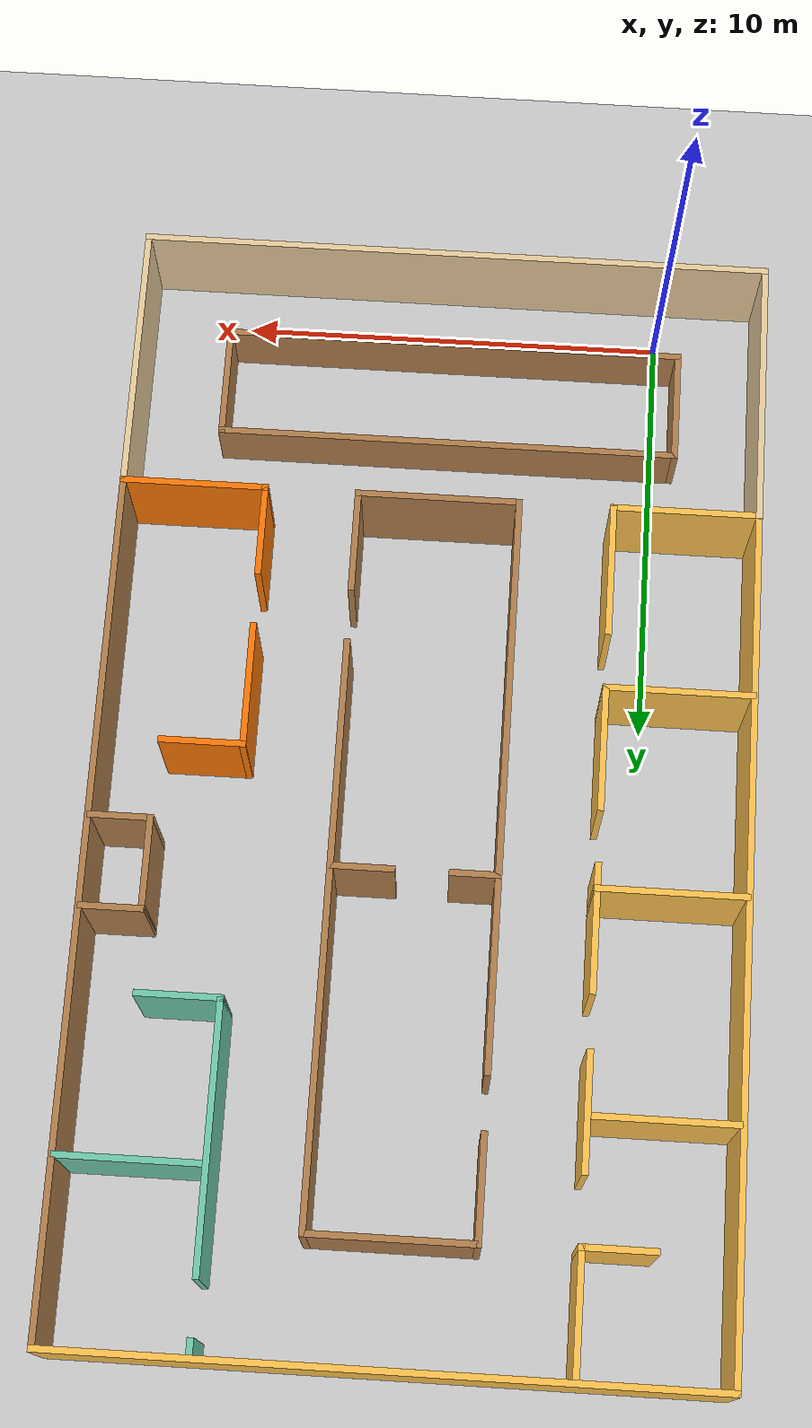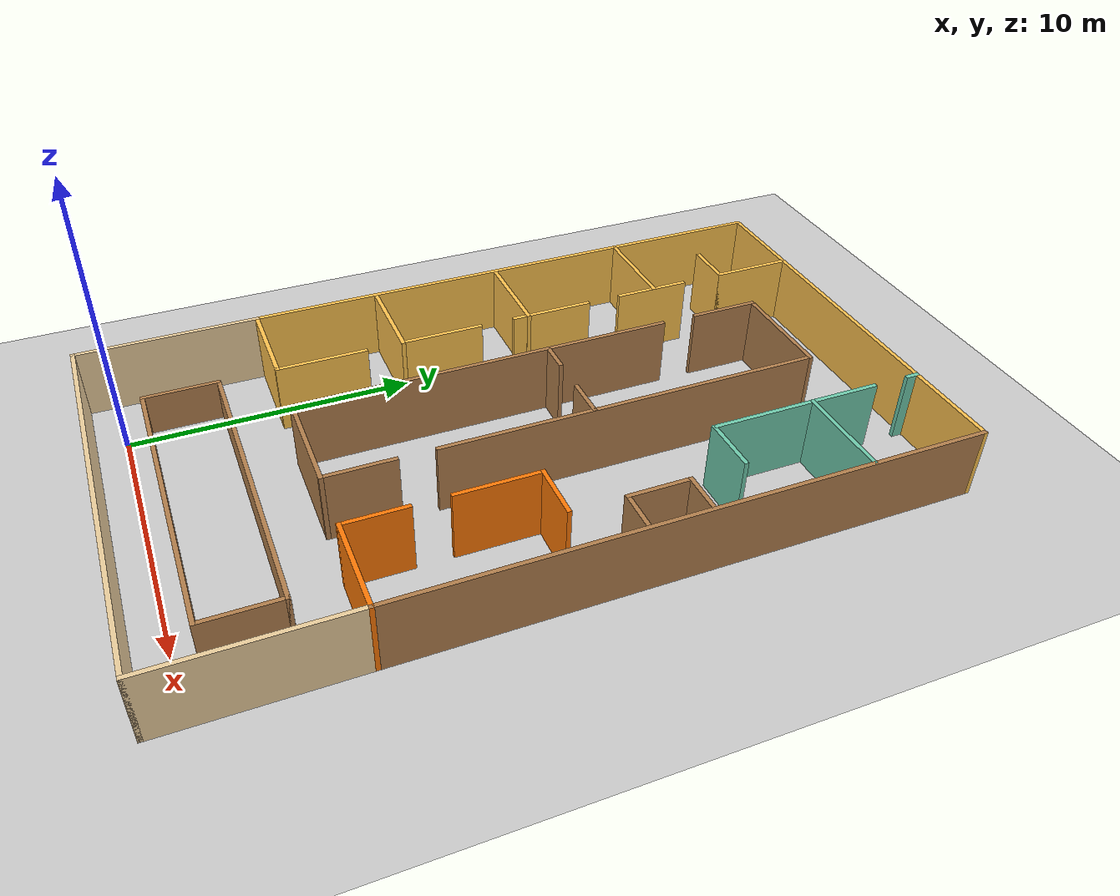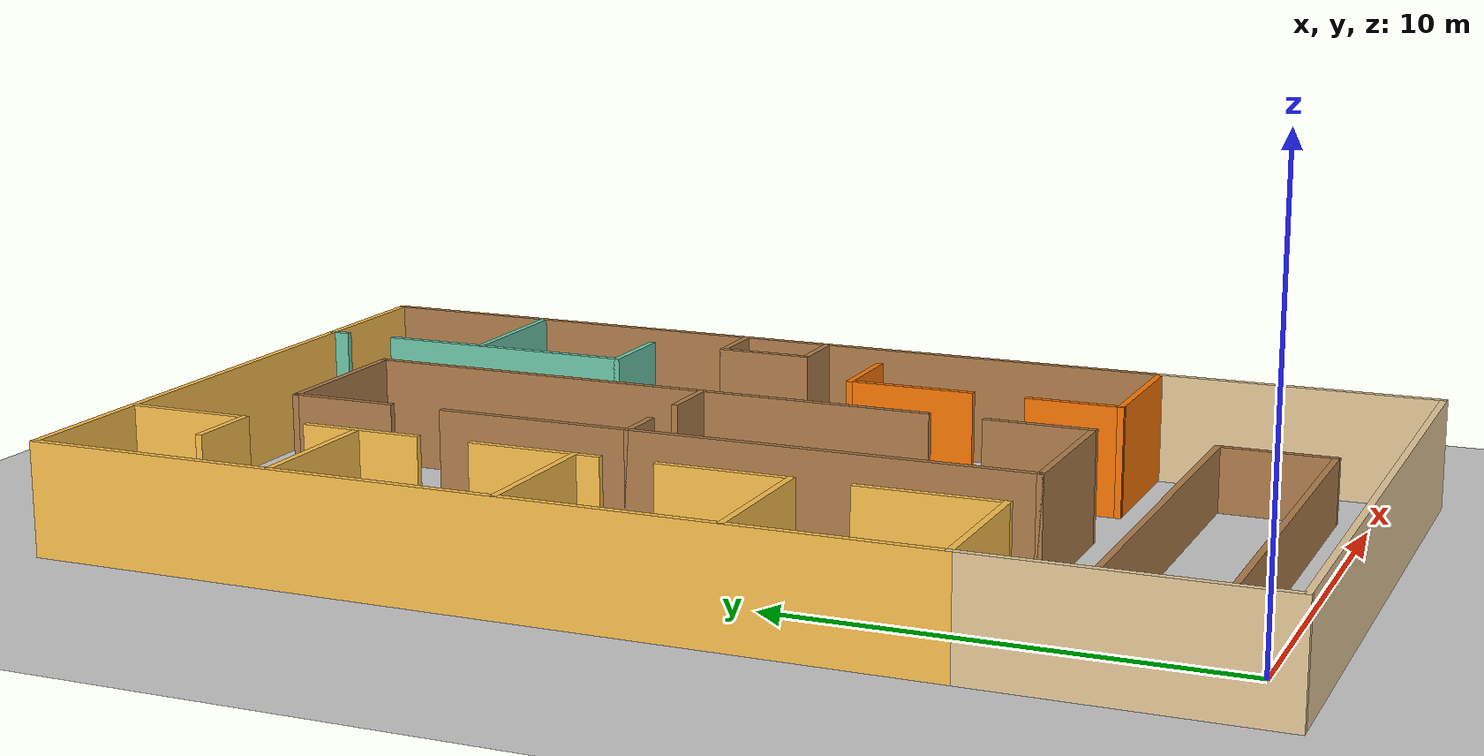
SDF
<sdf version="1.6">
 <world name="default">
  <light name="sun" type="directional">
   <pose>0 0 10 0 -0 0</pose>
   <diffuse>0.8 0.8 0.8 1</diffuse>
   <specular>0.2 0.2 0.2 1</specular>
   <attenuation>
    <range>1000</range>
    <constant>0.9</constant>
    <linear>0.01</linear>
    <quadratic>0.001</quadratic>
   </attenuation>
   <direction>-0.5 0.1 -0.9</direction>
  </light>
  <model name="ground_plane">
   <static>1</static>
   <link name="link">
    <collision name="collision">
     <geometry><plane><normal>0 0 1</normal><size>100 100</size></plane></geometry>
     <surface>
      <contact><collide_bitmask>65535</collide_bitmask></contact>
      <friction><ode><mu>100</mu><mu2>50</mu2></ode></friction>
     </surface>
    </collision>
    <visual name="visual">
     <cast_shadows>0</cast_shadows>
     <geometry><plane><normal>0 0 1</normal><size>100 100</size></plane></geometry>
     <material>
      <script><uri>file://media/materials/scripts/gazebo.material</uri><name>Gazebo/Grey</name></script>
     </material>
    </visual>
   </link>
  </model>
  <gravity>0 0 -9.8</gravity>
  <magnetic_field>6e-06 2.3e-05 -4.2e-05</magnetic_field>
  <atmosphere type="adiabatic"/>
  <physics name="default_physics" default="0" type="ode">
   <max_step_size>0.001</max_step_size>
   <real_time_factor>1</real_time_factor>
   <real_time_update_rate>1000</real_time_update_rate>
  </physics>
  <scene><ambient>0.4 0.4 0.4 1</ambient><background>0.7 0.7 0.7 1</background><shadows>1</shadows></scene>
  <spherical_coordinates>
   <surface_model>EARTH_WGS84</surface_model>
   <latitude_deg>0</latitude_deg>
   <longitude_deg>0</longitude_deg>
   <elevation>0</elevation>
   <heading_deg>0</heading_deg>
  </spherical_coordinates>
  <model name="office01">
   <pose>5 12 0 0 0 -1.5708</pose>
   <link name="Wall_101">
    <collision name="Wall_101_Collision">
     <geometry><box><size>3.908 0.15 2.5</size></box></geometry>
     <pose>0 0 1.25 0 -0 0</pose>
    </collision>
    <visual name="Wall_101_Visual">
     <pose>0 0 1.25 0 -0 0</pose>
     <geometry><box><size>3.908 0.15 2.5</size></box></geometry>
     <material>
      <script><uri>file://media/materials/scripts/gazebo.material</uri><name>Gazebo/Wood</name></script>
      <ambient>1 1 1 1</ambient>
     </material>
     <meta><layer>0</layer></meta>
    </visual>
    <pose>6.74313 0.040849 0 0 -0 1.5708</pose>
   </link>
   <link name="Wall_103">
    <collision name="Wall_103_Collision">
     <geometry><box><size>3.47808 0.15 2.5</size></box></geometry>
     <pose>0 0 1.25 0 -0 0</pose>
    </collision>
    <visual name="Wall_103_Visual">
     <pose>0 0 1.25 0 -0 0</pose>
     <geometry><box><size>3.47808 0.15 2.5</size></box></geometry>
     <material>
      <script><uri>file://media/materials/scripts/gazebo.material</uri><name>Gazebo/Grey</name></script>
      <ambient>0.996078 0.47451 0.0196078 1</ambient>
     </material>
     <meta><layer>0</layer></meta>
    </visual>
    <pose>6.75012 5.76085 0 0 -0 1.5708</pose>
   </link>
   <link name="Wall_105">
    <collision name="Wall_105_Collision">
     <geometry><box><size>3.53479 0.15 2.5</size></box></geometry>
     <pose>0 0 1.25 0 -0 0</pose>
    </collision>
    <visual name="Wall_105_Visual">
     <pose>0 0 1.25 0 -0 0</pose>
     <geometry><box><size>3.53479 0.15 2.5</size></box></geometry>
     <material>
      <script><uri>file://media/materials/scripts/gazebo.material</uri><name>Gazebo/Grey</name></script>
      <ambient>1 0.764706 0.305882 1</ambient>
     </material>
     <meta><layer>0</layer></meta>
    </visual>
    <pose>6.75012 -5.73265 0 0 -0 1.5708</pose>
   </link>
   <link name="Wall_113">
    <collision name="Wall_113_Collision">
     <geometry><box><size>6.5 0.15 2.5</size></box></geometry>
     <pose>0 0 1.25 0 -0 0</pose>
    </collision>
    <visual name="Wall_113_Visual">
     <pose>0 0 1.25 0 -0 0</pose>
     <geometry><box><size>6.5 0.15 2.5</size></box></geometry>
     <material>
      <script><uri>file://media/materials/scripts/gazebo.material</uri><name>Gazebo/Grey</name></script>
      <ambient>0.921569 0.807843 0.615686 1</ambient>
     </material>
     <meta><layer>0</layer></meta>
    </visual>
    <pose>9.92512 7.42485 0 0 -0 0</pose>
   </link>
   <link name="Wall_114">
    <collision name="Wall_114_Collision">
     <geometry><box><size>15 0.15 2.5</size></box></geometry>
     <pose>0 0 1.25 0 -0 0</pose>
    </collision>
    <visual name="Wall_114_Visual">
     <pose>0 0 1.25 0 -0 0</pose>
     <geometry><box><size>15 0.15 2.5</size></box></geometry>
     <material>
      <script><uri>file://media/materials/scripts/gazebo.material</uri><name>Gazebo/Grey</name></script>
      <ambient>0.921569 0.807843 0.615686 1</ambient>
     </material>
     <meta><layer>0</layer></meta>
    </visual>
    <pose>13.1001 -0.000151 0 0 -0 -1.5708</pose>
   </link>
   <link name="Wall_115">
    <collision name="Wall_115_Collision">
     <geometry><box><size>6.5 0.15 2.5</size></box></geometry>
     <pose>0 0 1.25 0 -0 0</pose>
    </collision>
    <visual name="Wall_115_Visual">
     <pose>0 0 1.25 0 -0 0</pose>
     <geometry><box><size>6.5 0.15 2.5</size></box></geometry>
     <material>
      <script><uri>file://media/materials/scripts/gazebo.material</uri><name>Gazebo/Grey</name></script>
      <ambient>0.921569 0.807843 0.615686 1</ambient>
     </material>
     <meta><layer>0</layer></meta>
    </visual>
    <pose>9.92512 -7.42515 0 0 -0 3.14159</pose>
   </link>
   <link name="Wall_117">
    <collision name="Wall_117_Collision">
     <geometry><box><size>2.75 0.15 1.5</size></box></geometry>
     <pose>0 0 0.75 0 -0 0</pose>
    </collision>
    <visual name="Wall_117_Visual">
     <pose>0 0 0.75 0 -0 0</pose>
     <geometry><box><size>2.75 0.15 1.5</size></box></geometry>
     <material>
      <script><uri>file://media/materials/scripts/gazebo.material</uri><name>Gazebo/Wood</name></script>
      <ambient>0.921569 0.807843 0.615686 1</ambient>
     </material>
     <meta><layer>0</layer></meta>
    </visual>
    <pose>9.90413 5.35785 0 0 -0 0</pose>
   </link>
   <link name="Wall_118">
    <collision name="Wall_118_Collision">
     <geometry><box><size>11 0.15 1.5</size></box></geometry>
     <pose>0 0 0.75 0 -0 0</pose>
    </collision>
    <visual name="Wall_118_Visual">
     <pose>0 0 0.75 0 -0 0</pose>
     <geometry><box><size>11 0.15 1.5</size></box></geometry>
     <material>
      <script><uri>file://media/materials/scripts/gazebo.material</uri><name>Gazebo/Wood</name></script>
      <ambient>0.921569 0.807843 0.615686 1</ambient>
     </material>
     <meta><layer>0</layer></meta>
    </visual>
    <pose>11.2041 -0.067151 0 0 -0 -1.5708</pose>
   </link>
   <link name="Wall_119">
    <collision name="Wall_119_Collision">
     <geometry><box><size>2.75 0.15 1.5</size></box></geometry>
     <pose>0 0 0.75 0 -0 0</pose>
    </collision>
    <visual name="Wall_119_Visual">
     <pose>0 0 0.75 0 -0 0</pose>
     <geometry><box><size>2.75 0.15 1.5</size></box></geometry>
     <material>
      <script><uri>file://media/materials/scripts/gazebo.material</uri><name>Gazebo/Wood</name></script>
      <ambient>0.921569 0.807843 0.615686 1</ambient>
     </material>
     <meta><layer>0</layer></meta>
    </visual>
    <pose>9.90413 -5.49215 0 0 -0 3.14159</pose>
   </link>
   <link name="Wall_120">
    <collision name="Wall_120_Collision">
     <geometry><box><size>11 0.15 1.5</size></box></geometry>
     <pose>0 0 0.75 0 -0 0</pose>
    </collision>
    <visual name="Wall_120_Visual">
     <pose>0 0 0.75 0 -0 0</pose>
     <geometry><box><size>11 0.15 1.5</size></box></geometry>
     <material>
      <script><uri>file://media/materials/scripts/gazebo.material</uri><name>Gazebo/Wood</name></script>
      <ambient>0.921569 0.807843 0.615686 1</ambient>
     </material>
     <meta><layer>0</layer></meta>
    </visual>
    <pose>8.60412 -0.067151 0 0 -0 1.5708</pose>
   </link>
   <link name="Wall_134">
    <collision name="Wall_134_Collision">
     <geometry><box><size>2.5 0.15 2.5</size></box></geometry>
     <pose>0 0 1.25 0 -0 0</pose>
    </collision>
    <visual name="Wall_134_Visual">
     <pose>0 0 1.25 0 -0 0</pose>
     <geometry><box><size>2.5 0.15 2.5</size></box></geometry>
     <material>
      <script><uri>file://media/materials/scripts/gazebo.material</uri><name>Gazebo/Wood</name></script>
      <ambient>1 1 1 1</ambient>
     </material>
     <meta><layer>0</layer></meta>
    </visual>
    <pose>5.56813 1.91985 0 0 -0 3.14159</pose>
   </link>
   <link name="Wall_136">
    <collision name="Wall_136_Collision">
     <geometry><box><size>13.5497 0.15 2.5</size></box></geometry>
     <pose>0 0 1.25 0 -0 0</pose>
    </collision>
    <visual name="Wall_136_Visual">
     <pose>0 0 1.25 0 -0 0</pose>
     <geometry><box><size>13.5497 0.15 2.5</size></box></geometry>
     <material>
      <script><uri>file://media/materials/scripts/gazebo.material</uri><name>Gazebo/Wood</name></script>
      <ambient>1 1 1 1</ambient>
     </material>
     <meta><layer>0</layer></meta>
    </visual>
    <pose>-3.65672 1.91961 0 0 -0 -3.14156</pose>
   </link>
   <link name="Wall_141">
    <collision name="Wall_141_Collision">
     <geometry><box><size>1.5 0.15 2.5</size></box></geometry>
     <pose>0 0 1.25 0 -0 0</pose>
    </collision>
    <visual name="Wall_141_Visual">
     <pose>0 0 1.25 0 -0 0</pose>
     <geometry><box><size>1.5 0.15 2.5</size></box></geometry>
     <material>
      <script><uri>file://media/materials/scripts/gazebo.material</uri><name>Gazebo/Wood</name></script>
      <ambient>1 1 1 1</ambient>
     </material>
     <meta><layer>0</layer></meta>
    </visual>
    <pose>-2.23986 1.21743 0 0 -0 -1.5708</pose>
   </link>
   <link name="Wall_143">
    <collision name="Wall_143_Collision">
     <geometry><box><size>1.181 0.15 2.5</size></box></geometry>
     <pose>0 0 1.25 0 -0 0</pose>
    </collision>
    <visual name="Wall_143_Visual">
     <pose>0 0 1.25 0 -0 0</pose>
     <geometry><box><size>1.181 0.15 2.5</size></box></geometry>
     <material>
      <script><uri>file://media/materials/scripts/gazebo.material</uri><name>Gazebo/Wood</name></script>
      <ambient>1 1 1 1</ambient>
     </material>
     <meta><layer>0</layer></meta>
    </visual>
    <pose>-2.23988 -1.32265 0 0 -0 -1.5708</pose>
   </link>
   <link name="Wall_145">
    <collision name="Wall_145_Collision">
     <geometry><box><size>2.5 0.15 2.5</size></box></geometry>
     <pose>0 0 1.25 0 -0 0</pose>
    </collision>
    <visual name="Wall_145_Visual">
     <pose>0 0 1.25 0 -0 0</pose>
     <geometry><box><size>2.5 0.15 2.5</size></box></geometry>
     <material>
      <script><uri>file://media/materials/scripts/gazebo.material</uri><name>Gazebo/Wood</name></script>
      <ambient>1 1 1 1</ambient>
     </material>
     <meta><layer>0</layer></meta>
    </visual>
    <pose>-9.18187 -1.83815 0 0 -0 0</pose>
   </link>
   <link name="Wall_147">
    <collision name="Wall_147_Collision">
     <geometry><box><size>13.5497 0.15 2.5</size></box></geometry>
     <pose>0 0 1.25 0 -0 0</pose>
    </collision>
    <visual name="Wall_147_Visual">
     <pose>0 0 1.25 0 -0 0</pose>
     <geometry><box><size>13.5497 0.15 2.5</size></box></geometry>
     <material>
      <script><uri>file://media/materials/scripts/gazebo.material</uri><name>Gazebo/Wood</name></script>
      <ambient>1 1 1 1</ambient>
     </material>
     <meta><layer>0</layer></meta>
    </visual>
    <pose>0.043125 -1.83815 0 0 -0 0</pose>
   </link>
   <link name="Wall_45">
    <collision name="Wall_45_Collision">
     <geometry><box><size>15 0.15 2.5</size></box></geometry>
     <pose>0 0 1.25 0 -0 0</pose>
    </collision>
    <visual name="Wall_45_Visual">
     <pose>0 0 1.25 0 -0 0</pose>
     <geometry><box><size>15 0.15 2.5</size></box></geometry>
     <material>
      <script><uri>file://media/materials/scripts/gazebo.material</uri><name>Gazebo/Grey</name></script>
      <ambient>1 0.764706 0.305882 1</ambient>
     </material>
     <meta><layer>0</layer></meta>
    </visual>
    <pose>-13.1001 0.000151 0 0 -0 -1.5708</pose>
   </link>
   <link name="Wall_46">
    <collision name="Wall_46_Collision">
     <geometry><box><size>20 0.15 2.5</size></box></geometry>
     <pose>0 0 1.25 0 -0 0</pose>
    </collision>
    <visual name="Wall_46_Visual">
     <pose>0 0 1.25 0 -0 0</pose>
     <geometry><box><size>20 0.15 2.5</size></box></geometry>
     <material>
      <script><uri>file://media/materials/scripts/gazebo.material</uri><name>Gazebo/Grey</name></script>
      <ambient>1 0.764706 0.305882 1</ambient>
     </material>
     <meta><layer>0</layer></meta>
    </visual>
    <pose>-3.175 -7.425 0 0 -0 -1.5e-05</pose>
   </link>
   <link name="Wall_48">
    <collision name="Wall_48_Collision">
     <geometry><box><size>20 0.15 2.5</size></box></geometry>
     <pose>0 0 1.25 0 -0 0</pose>
    </collision>
    <visual name="Wall_48_Visual">
     <pose>0 0 1.25 0 -0 0</pose>
     <geometry><box><size>20 0.15 2.5</size></box></geometry>
     <material>
      <script><uri>file://media/materials/scripts/gazebo.material</uri><name>Gazebo/Wood</name></script>
      <ambient>1 1 1 1</ambient>
     </material>
     <meta><layer>0</layer></meta>
    </visual>
    <pose>-3.175 7.425 0 0 -0 3.14158</pose>
   </link>
   <link name="Wall_50">
    <collision name="Wall_50_Collision">
     <geometry><box><size>0.5 0.15 2.5</size></box></geometry>
     <pose>0 0 1.25 0 -0 0</pose>
    </collision>
    <visual name="Wall_50_Visual">
     <pose>0 0 1.25 0 -0 0</pose>
     <geometry><box><size>0.5 0.15 2.5</size></box></geometry>
     <material>
      <script><uri>file://media/materials/scripts/gazebo.material</uri><name>Gazebo/Grey</name></script>
      <ambient>0.435294 0.796078 0.67451 1</ambient>
     </material>
     <meta><layer>0</layer></meta>
    </visual>
    <pose>-12.9145 4.09708 0 0 -0 0</pose>
   </link>
   <link name="Wall_52">
    <collision name="Wall_52_Collision">
     <geometry><box><size>6.1 0.15 2.5</size></box></geometry>
     <pose>0 0 1.25 0 -0 0</pose>
    </collision>
    <visual name="Wall_52_Visual">
     <pose>0 0 1.25 0 -0 0</pose>
     <geometry><box><size>6.1 0.15 2.5</size></box></geometry>
     <material>
      <script><uri>file://media/materials/scripts/gazebo.material</uri><name>Gazebo/Grey</name></script>
      <ambient>0.435294 0.796078 0.67451 1</ambient>
     </material>
     <meta><layer>0</layer></meta>
    </visual>
    <pose>-8.41488 4.09685 0 0 -0 0</pose>
   </link>
   <link name="Wall_58">
    <collision name="Wall_58_Collision">
     <geometry><box><size>3 0.15 2.5</size></box></geometry>
     <pose>0 0 1.25 0 -0 0</pose>
    </collision>
    <visual name="Wall_58_Visual">
     <pose>0 0 1.25 0 -0 0</pose>
     <geometry><box><size>3 0.15 2.5</size></box></geometry>
     <material>
      <script><uri>file://media/materials/scripts/gazebo.material</uri><name>Gazebo/Grey</name></script>
      <ambient>0.996078 0.47451 0.0196078 1</ambient>
     </material>
     <meta><layer>0</layer></meta>
    </visual>
    <pose>1.88553 4.09708 0 0 -0 0</pose>
   </link>
   <link name="Wall_60">
    <collision name="Wall_60_Collision">
     <geometry><box><size>2.23959 0.15 2.5</size></box></geometry>
     <pose>0 0 1.25 0 -0 0</pose>
    </collision>
    <visual name="Wall_60_Visual">
     <pose>0 0 1.25 0 -0 0</pose>
     <geometry><box><size>2.23959 0.15 2.5</size></box></geometry>
     <material>
      <script><uri>file://media/materials/scripts/gazebo.material</uri><name>Gazebo/Grey</name></script>
      <ambient>0.996078 0.47451 0.0196078 1</ambient>
     </material>
     <meta><layer>0</layer></meta>
    </visual>
    <pose>5.70533 4.09697 0 0 -0 -0.000112</pose>
   </link>
   <link name="Wall_62">
    <collision name="Wall_62_Collision">
     <geometry><box><size>3.42423 0.15 2.5</size></box></geometry>
     <pose>0 0 1.25 0 -0 0</pose>
    </collision>
    <visual name="Wall_62_Visual">
     <pose>0 0 1.25 0 -0 0</pose>
     <geometry><box><size>3.42423 0.15 2.5</size></box></geometry>
     <material>
      <script><uri>file://media/materials/scripts/gazebo.material</uri><name>Gazebo/Grey</name></script>
      <ambient>0.435294 0.796078 0.67451 1</ambient>
     </material>
     <meta><layer>0</layer></meta>
    </visual>
    <pose>-9.01587 5.73485 0 0 -0 1.5708</pose>
   </link>
   <link name="Wall_64">
    <collision name="Wall_64_Collision">
     <geometry><box><size>2 0.15 2.5</size></box></geometry>
     <pose>0 0 1.25 0 -0 0</pose>
    </collision>
    <visual name="Wall_64_Visual">
     <pose>0 0 1.25 0 -0 0</pose>
     <geometry><box><size>2 0.15 2.5</size></box></geometry>
     <material>
      <script><uri>file://media/materials/scripts/gazebo.material</uri><name>Gazebo/Grey</name></script>
      <ambient>0.435294 0.796078 0.67451 1</ambient>
     </material>
     <meta><layer>0</layer></meta>
    </visual>
    <pose>-5.38488 5.02185 0 0 -0 1.5708</pose>
   </link>
   <link name="Wall_69">
    <collision name="Wall_69_Collision">
     <geometry><box><size>2 0.15 2.5</size></box></geometry>
     <pose>0 0 1.25 0 -0 0</pose>
    </collision>
    <visual name="Wall_69_Visual">
     <pose>0 0 1.25 0 -0 0</pose>
     <geometry><box><size>2 0.15 2.5</size></box></geometry>
     <material>
      <script><uri>file://media/materials/scripts/gazebo.material</uri><name>Gazebo/Grey</name></script>
      <ambient>0.996078 0.47451 0.0196078 1</ambient>
     </material>
     <meta><layer>0</layer></meta>
    </visual>
    <pose>0.460532 5.02208 0 0 -0 1.5708</pose>
   </link>
   <link name="Wall_71">
    <collision name="Wall_71_Collision">
     <geometry><box><size>1.5 0.15 2.5</size></box></geometry>
     <pose>0 0 1.25 0 -0 0</pose>
    </collision>
    <visual name="Wall_71_Visual">
     <pose>0 0 1.25 0 -0 0</pose>
     <geometry><box><size>1.5 0.15 2.5</size></box></geometry>
     <material>
      <script><uri>file://media/materials/scripts/gazebo.material</uri><name>Gazebo/Wood</name></script>
      <ambient>1 1 1 1</ambient>
     </material>
     <meta><layer>0</layer></meta>
    </visual>
    <pose>-3.4953 6.6949 0 0 -0 -1.5708</pose>
   </link>
   <link name="Wall_72">
    <collision name="Wall_72_Collision">
     <geometry><box><size>2.25 0.15 2.5</size></box></geometry>
     <pose>0 0 1.25 0 -0 0</pose>
    </collision>
    <visual name="Wall_72_Visual">
     <pose>0 0 1.25 0 -0 0</pose>
     <geometry><box><size>2.25 0.15 2.5</size></box></geometry>
     <material>
      <script><uri>file://media/materials/scripts/gazebo.material</uri><name>Gazebo/Wood</name></script>
      <ambient>1 1 1 1</ambient>
     </material>
     <meta><layer>0</layer></meta>
    </visual>
    <pose>-2.4453 6.0199 0 0 -0 0</pose>
   </link>
   <link name="Wall_73">
    <collision name="Wall_73_Collision">
     <geometry><box><size>1.5 0.15 2.5</size></box></geometry>
     <pose>0 0 1.25 0 -0 0</pose>
    </collision>
    <visual name="Wall_73_Visual">
     <pose>0 0 1.25 0 -0 0</pose>
     <geometry><box><size>1.5 0.15 2.5</size></box></geometry>
     <material>
      <script><uri>file://media/materials/scripts/gazebo.material</uri><name>Gazebo/Wood</name></script>
      <ambient>1 1 1 1</ambient>
     </material>
     <meta><layer>0</layer></meta>
    </visual>
    <pose>-1.3953 6.6949 0 0 -0 1.5708</pose>
   </link>
   <link name="Wall_75">
    <collision name="Wall_75_Collision">
     <geometry><box><size>2.876 0.15 2.5</size></box></geometry>
     <pose>0 0 1.25 0 -0 0</pose>
    </collision>
    <visual name="Wall_75_Visual">
     <pose>0 0 1.25 0 -0 0</pose>
     <geometry><box><size>2.876 0.15 2.5</size></box></geometry>
     <material>
      <script><uri>file://media/materials/scripts/gazebo.material</uri><name>Gazebo/Grey</name></script>
      <ambient>1 0.764706 0.305882 1</ambient>
     </material>
     <meta><layer>0</layer></meta>
    </visual>
    <pose>-11.6379 -4.04015 0 0 -0 0</pose>
   </link>
   <link name="Wall_77">
    <collision name="Wall_77_Collision">
     <geometry><box><size>2.75 0.15 2.5</size></box></geometry>
     <pose>0 0 1.25 0 -0 0</pose>
    </collision>
    <visual name="Wall_77_Visual">
     <pose>0 0 1.25 0 -0 0</pose>
     <geometry><box><size>2.75 0.15 2.5</size></box></geometry>
     <material>
      <script><uri>file://media/materials/scripts/gazebo.material</uri><name>Gazebo/Grey</name></script>
      <ambient>1 0.764706 0.305882 1</ambient>
     </material>
     <meta><layer>0</layer></meta>
    </visual>
    <pose>-7.37478 -4.04037 0 0 -0 0</pose>
   </link>
   <link name="Wall_79">
    <collision name="Wall_79_Collision">
     <geometry><box><size>3 0.15 2.5</size></box></geometry>
     <pose>0 0 1.25 0 -0 0</pose>
    </collision>
    <visual name="Wall_79_Visual">
     <pose>0 0 1.25 0 -0 0</pose>
     <geometry><box><size>3 0.15 2.5</size></box></geometry>
     <material>
      <script><uri>file://media/materials/scripts/gazebo.material</uri><name>Gazebo/Grey</name></script>
      <ambient>1 0.764706 0.305882 1</ambient>
     </material>
     <meta><layer>0</layer></meta>
    </visual>
    <pose>-3.29978 -4.04037 0 0 -0 0</pose>
   </link>
   <link name="Wall_81">
    <collision name="Wall_81_Collision">
     <geometry><box><size>3 0.15 2.5</size></box></geometry>
     <pose>0 0 1.25 0 -0 0</pose>
    </collision>
    <visual name="Wall_81_Visual">
     <pose>0 0 1.25 0 -0 0</pose>
     <geometry><box><size>3 0.15 2.5</size></box></geometry>
     <material>
      <script><uri>file://media/materials/scripts/gazebo.material</uri><name>Gazebo/Grey</name></script>
      <ambient>1 0.764706 0.305882 1</ambient>
     </material>
     <meta><layer>0</layer></meta>
    </visual>
    <pose>0.900223 -4.04037 0 0 -0 0</pose>
   </link>
   <link name="Wall_83">
    <collision name="Wall_83_Collision">
     <geometry><box><size>3.225 0.15 2.5</size></box></geometry>
     <pose>0 0 1.25 0 -0 0</pose>
    </collision>
    <visual name="Wall_83_Visual">
     <pose>0 0 1.25 0 -0 0</pose>
     <geometry><box><size>3.225 0.15 2.5</size></box></geometry>
     <material>
      <script><uri>file://media/materials/scripts/gazebo.material</uri><name>Gazebo/Grey</name></script>
      <ambient>1 0.764706 0.305882 1</ambient>
     </material>
     <meta><layer>0</layer></meta>
    </visual>
    <pose>5.21263 -4.04015 0 0 -0 0</pose>
   </link>
   <link name="Wall_89">
    <collision name="Wall_89_Collision">
     <geometry><box><size>3.5 0.15 2.5</size></box></geometry>
     <pose>0 0 1.25 0 -0 0</pose>
    </collision>
    <visual name="Wall_89_Visual">
     <pose>0 0 1.25 0 -0 0</pose>
     <geometry><box><size>3.5 0.15 2.5</size></box></geometry>
     <material>
      <script><uri>file://media/materials/scripts/gazebo.material</uri><name>Gazebo/Grey</name></script>
      <ambient>1 0.764706 0.305882 1</ambient>
     </material>
     <meta><layer>0</layer></meta>
    </visual>
    <pose>-7.4641 -5.72876 0 0 -0 -1.5708</pose>
   </link>
   <link name="Wall_91">
    <collision name="Wall_91_Collision">
     <geometry><box><size>1.75 0.15 2.5</size></box></geometry>
     <pose>0 0 1.25 0 -0 0</pose>
    </collision>
    <visual name="Wall_91_Visual">
     <pose>0 0 1.25 0 -0 0</pose>
     <geometry><box><size>1.75 0.15 2.5</size></box></geometry>
     <material>
      <script><uri>file://media/materials/scripts/gazebo.material</uri><name>Gazebo/Grey</name></script>
      <ambient>1 0.764706 0.305882 1</ambient>
     </material>
     <meta><layer>0</layer></meta>
    </visual>
    <pose>-10.2749 -4.84015 0 0 -0 -1.5708</pose>
   </link>
   <link name="Wall_93">
    <collision name="Wall_93_Collision">
     <geometry><box><size>3.5 0.15 2.5</size></box></geometry>
     <pose>0 0 1.25 0 -0 0</pose>
    </collision>
    <visual name="Wall_93_Visual">
     <pose>0 0 1.25 0 -0 0</pose>
     <geometry><box><size>3.5 0.15 2.5</size></box></geometry>
     <material>
      <script><uri>file://media/materials/scripts/gazebo.material</uri><name>Gazebo/Grey</name></script>
      <ambient>1 0.764706 0.305882 1</ambient>
     </material>
     <meta><layer>0</layer></meta>
    </visual>
    <pose>-2.39377 -5.71073 0 0 -0 -1.5708</pose>
   </link>
   <link name="Wall_96">
    <collision name="Wall_96_Collision">
     <geometry><box><size>3.5 0.15 2.5</size></box></geometry>
     <pose>0 0 1.25 0 -0 0</pose>
    </collision>
    <visual name="Wall_96_Visual">
     <pose>0 0 1.25 0 -0 0</pose>
     <geometry><box><size>3.5 0.15 2.5</size></box></geometry>
     <material>
      <script><uri>file://media/materials/scripts/gazebo.material</uri><name>Gazebo/Grey</name></script>
      <ambient>1 0.764706 0.305882 1</ambient>
     </material>
     <meta><layer>0</layer></meta>
    </visual>
    <pose>2.32522 -5.71537 0 0 -0 -1.5708</pose>
   </link>
   <link name="Wall_99">
    <collision name="Wall_99_Collision">
     <geometry><box><size>3.90802 0.15 2.5</size></box></geometry>
     <pose>0 0 1.25 0 -0 0</pose>
    </collision>
    <visual name="Wall_99_Visual">
     <pose>0 0 1.25 0 -0 0</pose>
     <geometry><box><size>3.90802 0.15 2.5</size></box></geometry>
     <material>
      <script><uri>file://media/materials/scripts/gazebo.material</uri><name>Gazebo/Wood</name></script>
      <ambient>1 1 1 1</ambient>
     </material>
     <meta><layer>0</layer></meta>
    </visual>
    <pose>-10.3567 0.040614 0 0 -0 -1.57088</pose>
   </link>
   <static>1</static>
  </model>
 </world>
</sdf>
